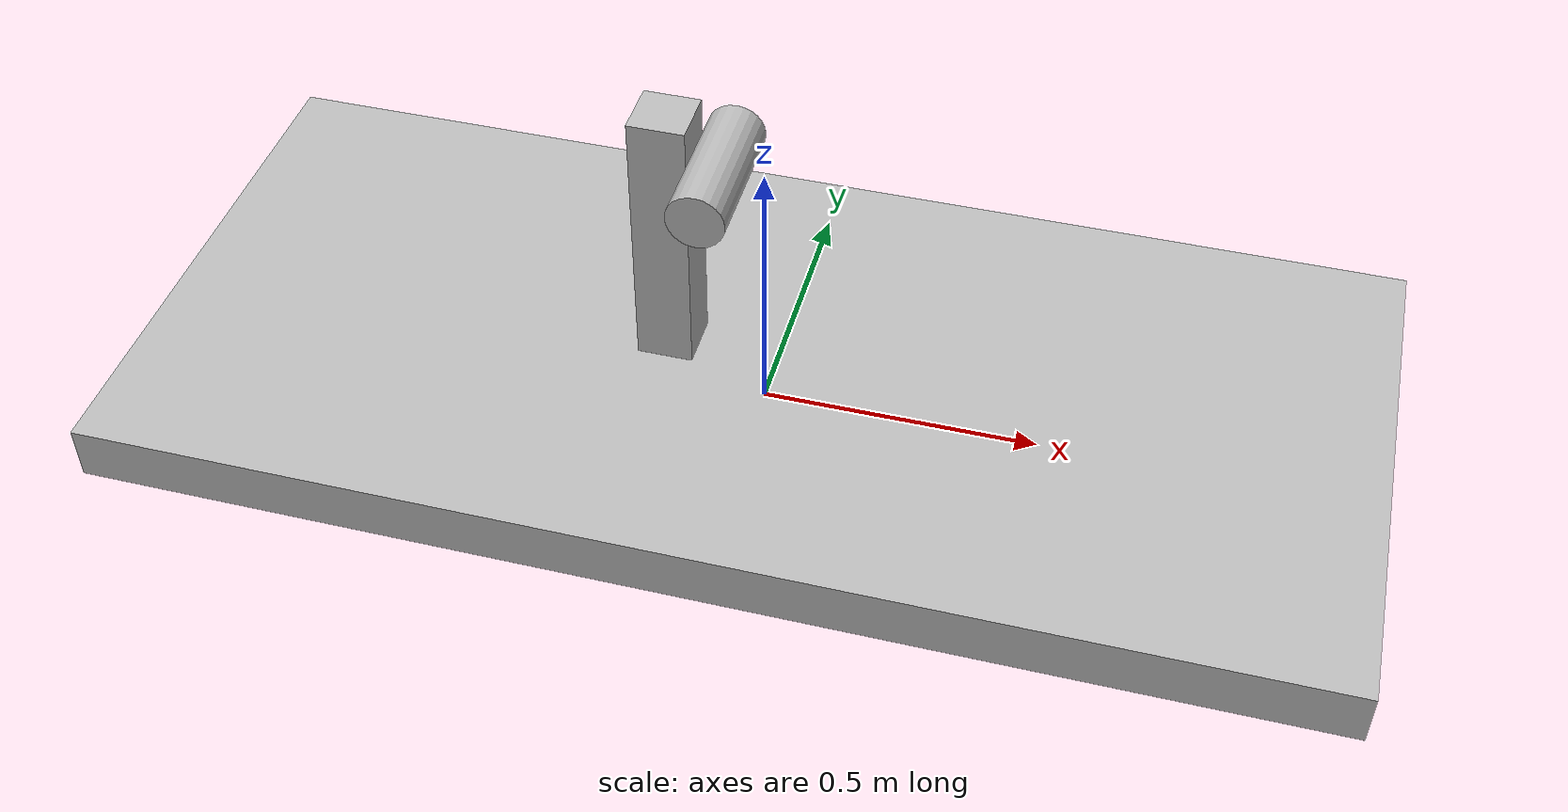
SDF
<?xml version="1.0"?>
<sdf version="1.5">
    <model name="revolute2_demo">
        <link name="heavy_base">
            <!-- position the base such that the bottom touches the floor -->
            <pose>0 0 0.05 0 0 0</pose>
            <inertial>
                <mass>100</mass>                <!-- kg -->
                <inertia>
                    <!-- (mass / 12) * (y*y + z*z) -->
                    <ixx>8.4167</ixx>
                    <ixy>0</ixy>
                    <ixz>0</ixz>
                    <!-- (mass / 12) * (x*x + z*z) -->
                    <iyy>40.417</iyy>
                    <iyz>0</iyz>
                    <!-- (mass / 12) * (y*y + x*x) -->
                    <izz>48.667</izz>
                </inertia>
            </inertial>
            <!-- Same geometry as visual -->
            <collision name="heavy_base_collision">
                <geometry>
                    <box>
                        <size>2.2 1 0.1</size>
                    </box>
                </geometry>
            </collision>
            <!-- Same geometry as collision -->
            <visual name="heavy_base_visual">
                <geometry>
                    <box>
                        <size>2.2 1 0.1</size>
                    </box>
                </geometry>
                <material>
                    <script>
                        <uri>model://demo_joint_types/materials/scripts</uri>
                        <uri>model://demo_joint_types/materials/textures</uri>
                        <name>demo_joint_types/legend</name>
                    </script>
                </material>
            </visual>
        </link>

        <link name="revolute2_base">
            <!-- Put the bottom of the child on top of the parent-->
            <pose >-.17 0 0.35 0 0 0</pose>
            <inertial>
                <inertia>
                    <!-- (mass / 12) * (y*y + z*z) -->
                    <ixx>0.021667</ixx>
                    <ixy>0</ixy>
                    <ixz>0</ixz>
                    <!-- (mass / 12) * (x*x + z*z) -->
                    <iyy>0.021667</iyy>
                    <iyz>0</iyz>
                    <!-- (mass / 12) * (y*y + x*x) -->
                    <izz>0.0016667</izz>
                </inertia>
            </inertial>
            <!-- Same geometry as visual -->
            <collision name="revolute2_base_collision">
                <geometry>
                    <box>
                        <size>0.1 0.1 0.5</size>
                    </box>
                </geometry>
            </collision>
            <!-- Same geometry as collision -->
            <visual name="revolute2_base_visual">
                <geometry>
                    <box>
                        <size>0.1 0.1 0.5</size>
                    </box>
                </geometry>
                <material>
                    <script>
                        <uri>model://demo_joint_types/materials/scripts</uri>
                        <uri>model://demo_joint_types/materials/textures</uri>
                        <name>demo_joint_types/parent</name>
                    </script>
                </material>
            </visual>
        </link>

        <joint name="revolute2_base_to_heavy_base" type="fixed">
            <parent>heavy_base</parent>
            <child>revolute2_base</child>
        </joint>

        <link name="revolute2_arm">
            <!-- Put the arm near the top of the base
             -->
            <pose >-.06 -0.075 0.55 1.5708 0 0</pose>
            <inertial>
                <inertia>
                    <!-- (mass / 12) * (3 * radius * radius + length * length) -->
                    <ixx>0.0058333</ixx>
                    <ixy>0</ixy>
                    <ixz>0</ixz>
                    <!-- (mass / 12) * (3 * radius * radius + length * length) -->
                    <iyy>0.0058333</iyy>
                    <iyz>0</iyz>
                    <!-- mass * radius * radius * 0.5 -->
                    <izz>0.00125</izz>
                </inertia>
                <!-- offset interia as a trick to get movement from gravity -->
                <pose >-.1 -0.1 0.1 0 0 0</pose>
            </inertial>
            <!-- Same geometry as visual -->
            <collision name="revolute2_arm_collision">
                <geometry>
                    <cylinder>
                        <radius>0.05</radius>
                        <length>0.25</length>
                    </cylinder>
                </geometry>
            </collision>
            <!-- Same geometry as collision -->
            <visual name="revolute2_arm_visual">
                <geometry>
                    <cylinder>
                        <radius>0.05</radius>
                        <length>0.25</length>
                    </cylinder>
                </geometry>
                <material>
                    <script>
                        <uri>model://demo_joint_types/materials/scripts</uri>
                        <uri>model://demo_joint_types/materials/textures</uri>
                        <name>demo_joint_types/child</name>
                    </script>
                </material>
            </visual>
        </link>

        <joint name="revolute2_demo" type="revolute2">
            <parent>revolute2_base</parent>
            <child>revolute2_arm</child>
            <axis>
                <xyz>1 0 0</xyz>
            </axis>
            <axis2>
                <xyz>0 1 0</xyz>
            </axis2>
            <pose>0 0 -0.075  0 0 0</pose>
        </joint>
    </model>
</sdf>
